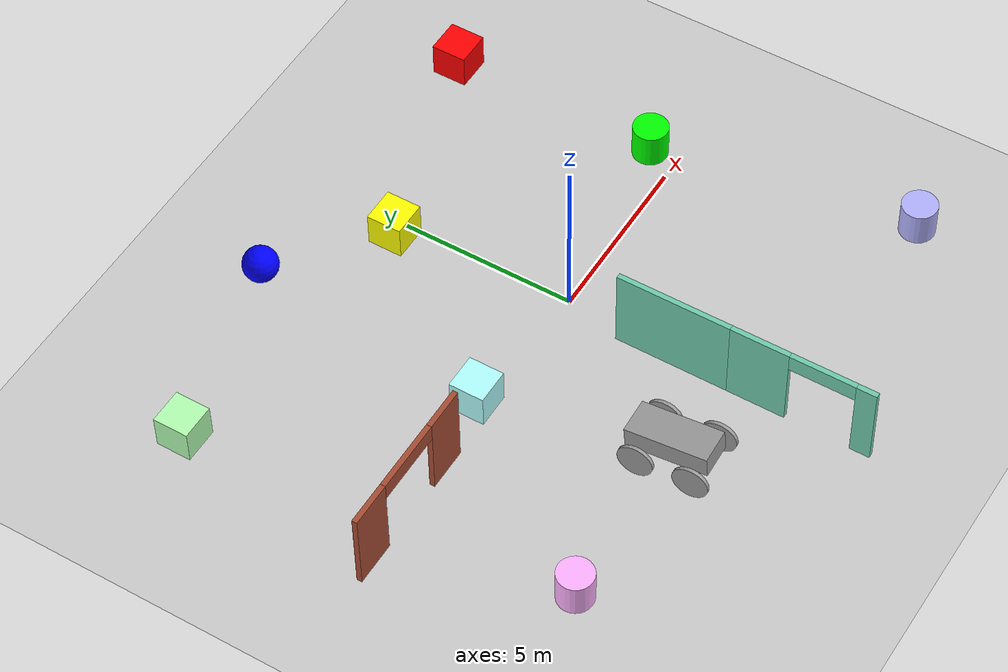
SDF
<sdf version="1.6">
 <world name="default">
  <model name="ground_plane">
   <static>1</static>
   <link name="link">
    <collision name="collision">
     <geometry><plane><normal>0 0 1</normal><size>100 100</size></plane></geometry>
     <surface>
      <contact><collide_bitmask>65535</collide_bitmask></contact>
      <friction><ode><mu>100</mu><mu2>50</mu2></ode></friction>
     </surface>
    </collision>
    <visual name="visual">
     <cast_shadows>0</cast_shadows>
     <geometry><plane><normal>0 0 1</normal><size>100 100</size></plane></geometry>
     <material>
      <script><uri>file://media/materials/scripts/gazebo.material</uri><name>Gazebo/Grey</name></script>
     </material>
    </visual>
   </link>
  </model>
  <model name="ground_plane">
   <static>1</static>
   <link name="link">
    <collision name="collision">
     <geometry><plane><normal>0 0 1</normal><size>100 100</size></plane></geometry>
     <surface>
      <contact><collide_bitmask>65535</collide_bitmask></contact>
      <friction><ode><mu>100</mu><mu2>50</mu2></ode></friction>
     </surface>
    </collision>
    <visual name="visual">
     <cast_shadows>0</cast_shadows>
     <geometry><plane><normal>0 0 1</normal><size>100 100</size></plane></geometry>
     <material>
      <script><uri>file://media/materials/scripts/gazebo.material</uri><name>Gazebo/Grey</name></script>
     </material>
    </visual>
   </link>
  </model>
  <model name="model">
   <link name="link_0_clone">
    <inertial>
     <mass>1</mass>
     <inertia><ixx>0.145833</ixx><ixy>0</ixy><ixz>0</ixz><iyy>0.145833</iyy><iyz>0</iyz><izz>0.125</izz></inertia>
    </inertial>
    <pose>0.800049 0.773824 -0.030357 0 -0 0</pose>
    <visual name="visual">
     <pose>0 0 0 0 1.5707 0</pose>
     <geometry><cylinder><radius>0.5</radius><length>0.1</length></cylinder></geometry>
     <material>
      <lighting>1</lighting>
      <script><uri>file://media/materials/scripts/gazebo.material</uri><name>Gazebo/Grey</name></script>
      <shader type="vertex"><normal_map>__default__</normal_map></shader>
      <ambient>0.3 0.3 0.3 1</ambient>
      <diffuse>0.7 0.7 0.7 1</diffuse>
      <specular>0.01 0.01 0.01 1</specular>
      <emissive>0 0 0 1</emissive>
     </material>
    </visual>
    <collision name="collision">
     <pose>0 0 0 0 1.5707 0</pose>
     <geometry><cylinder><radius>0.5</radius><length>0.1</length></cylinder></geometry>
     <surface>
      <friction>
       <ode><mu>1</mu><mu2>1</mu2><fdir1>0 0 0</fdir1><slip1>0</slip1><slip2>0</slip2></ode>
       <torsional>
        <coefficient>1</coefficient>
        <patch_radius>0</patch_radius>
        <surface_radius>0</surface_radius>
        <use_patch_radius>1</use_patch_radius>
        <ode><slip>0</slip></ode>
       </torsional>
      </friction>
      <bounce><restitution_coefficient>0</restitution_coefficient><threshold>1e+06</threshold></bounce>
      <contact>
       <collide_without_contact>0</collide_without_contact>
       <collide_without_contact_bitmask>1</collide_without_contact_bitmask>
       <collide_bitmask>1</collide_bitmask>
       <ode>
        <soft_cfm>0</soft_cfm>
        <soft_erp>0.2</soft_erp>
        <kp>1e+13</kp>
        <kd>1</kd>
        <max_vel>0.01</max_vel>
        <min_depth>0</min_depth>
       </ode>
       <bullet>
        <split_impulse>1</split_impulse>
        <split_impulse_penetration_threshold>-0.01</split_impulse_penetration_threshold>
        <soft_cfm>0</soft_cfm>
        <soft_erp>0.2</soft_erp>
        <kp>1e+13</kp>
        <kd>1</kd>
       </bullet>
      </contact>
     </surface>
    </collision>
   </link>
   <link name="link_0_clone_clone">
    <inertial>
     <mass>1</mass>
     <inertia><ixx>0.145833</ixx><ixy>0</ixy><ixz>0</ixz><iyy>0.145833</iyy><iyz>0</iyz><izz>0.125</izz></inertia>
    </inertial>
    <pose>-0.800048 0.773824 -0.030357 0 -0 0</pose>
    <visual name="visual">
     <pose>0 0 0 0 1.5707 0</pose>
     <geometry><cylinder><radius>0.5</radius><length>0.1</length></cylinder></geometry>
     <material>
      <lighting>1</lighting>
      <script><uri>file://media/materials/scripts/gazebo.material</uri><name>Gazebo/Grey</name></script>
      <shader type="vertex"><normal_map>__default__</normal_map></shader>
      <ambient>0.3 0.3 0.3 1</ambient>
      <diffuse>0.7 0.7 0.7 1</diffuse>
      <specular>0.01 0.01 0.01 1</specular>
      <emissive>0 0 0 1</emissive>
     </material>
    </visual>
    <collision name="collision">
     <pose>0 0 0 0 1.5707 0</pose>
     <geometry><cylinder><radius>0.5</radius><length>0.1</length></cylinder></geometry>
     <surface>
      <friction>
       <ode><mu>1</mu><mu2>1</mu2><fdir1>0 0 0</fdir1><slip1>0</slip1><slip2>0</slip2></ode>
       <torsional>
        <coefficient>1</coefficient>
        <patch_radius>0</patch_radius>
        <surface_radius>0</surface_radius>
        <use_patch_radius>1</use_patch_radius>
        <ode><slip>0</slip></ode>
       </torsional>
      </friction>
      <bounce><restitution_coefficient>0</restitution_coefficient><threshold>1e+06</threshold></bounce>
      <contact>
       <collide_without_contact>0</collide_without_contact>
       <collide_without_contact_bitmask>1</collide_without_contact_bitmask>
       <collide_bitmask>1</collide_bitmask>
       <ode>
        <soft_cfm>0</soft_cfm>
        <soft_erp>0.2</soft_erp>
        <kp>1e+13</kp>
        <kd>1</kd>
        <max_vel>0.01</max_vel>
        <min_depth>0</min_depth>
       </ode>
       <bullet>
        <split_impulse>1</split_impulse>
        <split_impulse_penetration_threshold>-0.01</split_impulse_penetration_threshold>
        <soft_cfm>0</soft_cfm>
        <soft_erp>0.2</soft_erp>
        <kp>1e+13</kp>
        <kd>1</kd>
       </bullet>
      </contact>
     </surface>
    </collision>
   </link>
   <link name="link_0_clone_clone_clone">
    <inertial>
     <mass>1</mass>
     <inertia><ixx>0.145833</ixx><ixy>0</ixy><ixz>0</ixz><iyy>0.145833</iyy><iyz>0</iyz><izz>0.125</izz></inertia>
    </inertial>
    <pose>-0.800048 -0.758676 -0.062857 0 -0 0</pose>
    <visual name="visual">
     <pose>0 0 0 0 1.5707 0</pose>
     <geometry><cylinder><radius>0.5</radius><length>0.1</length></cylinder></geometry>
     <material>
      <lighting>1</lighting>
      <script><uri>file://media/materials/scripts/gazebo.material</uri><name>Gazebo/Grey</name></script>
      <shader type="vertex"><normal_map>__default__</normal_map></shader>
      <ambient>0.3 0.3 0.3 1</ambient>
      <diffuse>0.7 0.7 0.7 1</diffuse>
      <specular>0.01 0.01 0.01 1</specular>
      <emissive>0 0 0 1</emissive>
     </material>
    </visual>
    <collision name="collision">
     <pose>0 0 0 0 1.5707 0</pose>
     <geometry><cylinder><radius>0.5</radius><length>0.1</length></cylinder></geometry>
     <surface>
      <friction>
       <ode><mu>1</mu><mu2>1</mu2><fdir1>0 0 0</fdir1><slip1>0</slip1><slip2>0</slip2></ode>
       <torsional>
        <coefficient>1</coefficient>
        <patch_radius>0</patch_radius>
        <surface_radius>0</surface_radius>
        <use_patch_radius>1</use_patch_radius>
        <ode><slip>0</slip></ode>
       </torsional>
      </friction>
      <bounce><restitution_coefficient>0</restitution_coefficient><threshold>1e+06</threshold></bounce>
      <contact>
       <collide_without_contact>0</collide_without_contact>
       <collide_without_contact_bitmask>1</collide_without_contact_bitmask>
       <collide_bitmask>1</collide_bitmask>
       <ode>
        <soft_cfm>0</soft_cfm>
        <soft_erp>0.2</soft_erp>
        <kp>1e+13</kp>
        <kd>1</kd>
        <max_vel>0.01</max_vel>
        <min_depth>0</min_depth>
       </ode>
       <bullet>
        <split_impulse>1</split_impulse>
        <split_impulse_penetration_threshold>-0.01</split_impulse_penetration_threshold>
        <soft_cfm>0</soft_cfm>
        <soft_erp>0.2</soft_erp>
        <kp>1e+13</kp>
        <kd>1</kd>
       </bullet>
      </contact>
     </surface>
    </collision>
   </link>
   <link name="link_0_clone_clone_clone_0">
    <inertial>
     <mass>1</mass>
     <inertia><ixx>0.145833</ixx><ixy>0</ixy><ixz>0</ixz><iyy>0.145833</iyy><iyz>0</iyz><izz>0.125</izz></inertia>
    </inertial>
    <pose>0.800049 -0.758676 -0.062857 0 -0 0</pose>
    <visual name="visual">
     <pose>0 0 0 0 1.5707 0</pose>
     <geometry><cylinder><radius>0.5</radius><length>0.1</length></cylinder></geometry>
     <material>
      <lighting>1</lighting>
      <script><uri>file://media/materials/scripts/gazebo.material</uri><name>Gazebo/Grey</name></script>
      <shader type="vertex"><normal_map>__default__</normal_map></shader>
      <ambient>0.3 0.3 0.3 1</ambient>
      <diffuse>0.7 0.7 0.7 1</diffuse>
      <specular>0.01 0.01 0.01 1</specular>
      <emissive>0 0 0 1</emissive>
     </material>
    </visual>
    <collision name="collision">
     <pose>0 0 0 0 1.5707 0</pose>
     <geometry><cylinder><radius>0.5</radius><length>0.1</length></cylinder></geometry>
     <surface>
      <friction>
       <ode><mu>1</mu><mu2>1</mu2><fdir1>0 0 0</fdir1><slip1>0</slip1><slip2>0</slip2></ode>
       <torsional>
        <coefficient>1</coefficient>
        <patch_radius>0</patch_radius>
        <surface_radius>0</surface_radius>
        <use_patch_radius>1</use_patch_radius>
        <ode><slip>0</slip></ode>
       </torsional>
      </friction>
      <bounce><restitution_coefficient>0</restitution_coefficient><threshold>1e+06</threshold></bounce>
      <contact>
       <collide_without_contact>0</collide_without_contact>
       <collide_without_contact_bitmask>1</collide_without_contact_bitmask>
       <collide_bitmask>1</collide_bitmask>
       <ode>
        <soft_cfm>0</soft_cfm>
        <soft_erp>0.2</soft_erp>
        <kp>1e+13</kp>
        <kd>1</kd>
        <max_vel>0.01</max_vel>
        <min_depth>0</min_depth>
       </ode>
       <bullet>
        <split_impulse>1</split_impulse>
        <split_impulse_penetration_threshold>-0.01</split_impulse_penetration_threshold>
        <soft_cfm>0</soft_cfm>
        <soft_erp>0.2</soft_erp>
        <kp>1e+13</kp>
        <kd>1</kd>
       </bullet>
      </contact>
     </surface>
    </collision>
   </link>
   <link name="link_1">
    <inertial>
     <mass>1</mass>
     <inertia>
      <ixx>0.166667</ixx>
      <ixy>0</ixy>
      <ixz>0</ixz>
      <iyy>0.166667</iyy>
      <iyz>0</iyz>
      <izz>0.166667</izz>
     </inertia>
    </inertial>
    <pose>0 0.741324 -0.062857 0 -0 0</pose>
    <visual name="visual">
     <geometry><box><size>1.5 0.15 0.15</size></box></geometry>
     <material>
      <lighting>1</lighting>
      <script><uri>file://media/materials/scripts/gazebo.material</uri><name>Gazebo/Grey</name></script>
      <shader type="vertex"><normal_map>__default__</normal_map></shader>
      <ambient>0.3 0.3 0.3 1</ambient>
      <diffuse>0.7 0.7 0.7 1</diffuse>
      <specular>0.01 0.01 0.01 1</specular>
      <emissive>0 0 0 1</emissive>
     </material>
    </visual>
    <collision name="collision">
     <geometry><box><size>1.5 0.15 0.15</size></box></geometry>
     <surface>
      <friction>
       <ode><mu>1</mu><mu2>1</mu2><fdir1>0 0 0</fdir1><slip1>0</slip1><slip2>0</slip2></ode>
       <torsional>
        <coefficient>1</coefficient>
        <patch_radius>0</patch_radius>
        <surface_radius>0</surface_radius>
        <use_patch_radius>1</use_patch_radius>
        <ode><slip>0</slip></ode>
       </torsional>
      </friction>
      <bounce><restitution_coefficient>0</restitution_coefficient><threshold>1e+06</threshold></bounce>
      <contact>
       <collide_without_contact>0</collide_without_contact>
       <collide_without_contact_bitmask>1</collide_without_contact_bitmask>
       <collide_bitmask>1</collide_bitmask>
       <ode>
        <soft_cfm>0</soft_cfm>
        <soft_erp>0.2</soft_erp>
        <kp>1e+13</kp>
        <kd>1</kd>
        <max_vel>0.01</max_vel>
        <min_depth>0</min_depth>
       </ode>
       <bullet>
        <split_impulse>1</split_impulse>
        <split_impulse_penetration_threshold>-0.01</split_impulse_penetration_threshold>
        <soft_cfm>0</soft_cfm>
        <soft_erp>0.2</soft_erp>
        <kp>1e+13</kp>
        <kd>1</kd>
       </bullet>
      </contact>
     </surface>
    </collision>
   </link>
   <link name="link_1_clone">
    <inertial>
     <mass>1</mass>
     <inertia>
      <ixx>0.166667</ixx>
      <ixy>0</ixy>
      <ixz>0</ixz>
      <iyy>0.166667</iyy>
      <iyz>0</iyz>
      <izz>0.166667</izz>
     </inertia>
    </inertial>
    <pose>0 -0.758676 -0.062857 0 -0 0</pose>
    <visual name="visual">
     <geometry><box><size>1.5 0.15 0.15</size></box></geometry>
     <material>
      <lighting>1</lighting>
      <script><uri>file://media/materials/scripts/gazebo.material</uri><name>Gazebo/Grey</name></script>
      <shader type="vertex"><normal_map>__default__</normal_map></shader>
      <ambient>0.3 0.3 0.3 1</ambient>
      <diffuse>0.7 0.7 0.7 1</diffuse>
      <specular>0.01 0.01 0.01 1</specular>
      <emissive>0 0 0 1</emissive>
     </material>
    </visual>
    <collision name="collision">
     <geometry><box><size>1.5 0.15 0.15</size></box></geometry>
     <surface>
      <friction>
       <ode><mu>1</mu><mu2>1</mu2><fdir1>0 0 0</fdir1><slip1>0</slip1><slip2>0</slip2></ode>
       <torsional>
        <coefficient>1</coefficient>
        <patch_radius>0</patch_radius>
        <surface_radius>0</surface_radius>
        <use_patch_radius>1</use_patch_radius>
        <ode><slip>0</slip></ode>
       </torsional>
      </friction>
      <bounce><restitution_coefficient>0</restitution_coefficient><threshold>1e+06</threshold></bounce>
      <contact>
       <collide_without_contact>0</collide_without_contact>
       <collide_without_contact_bitmask>1</collide_without_contact_bitmask>
       <collide_bitmask>1</collide_bitmask>
       <ode>
        <soft_cfm>0</soft_cfm>
        <soft_erp>0.2</soft_erp>
        <kp>1e+13</kp>
        <kd>1</kd>
        <max_vel>0.01</max_vel>
        <min_depth>0</min_depth>
       </ode>
       <bullet>
        <split_impulse>1</split_impulse>
        <split_impulse_penetration_threshold>-0.01</split_impulse_penetration_threshold>
        <soft_cfm>0</soft_cfm>
        <soft_erp>0.2</soft_erp>
        <kp>1e+13</kp>
        <kd>1</kd>
       </bullet>
      </contact>
     </surface>
    </collision>
   </link>
   <link name="link_4">
    <inertial>
     <mass>2.30548</mass>
     <inertia><ixx>1.2133</ixx><ixy>0</ixy><ixz>0</ixz><iyy>0.384247</iyy><iyz>0</iyz><izz>1.2133</izz></inertia>
    </inertial>
    <pose>0 0.069782 0.312143 0 -0 0</pose>
    <visual name="visual">
     <geometry><box><size>1 2.30548 0.6</size></box></geometry>
     <material>
      <lighting>1</lighting>
      <script><uri>file://media/materials/scripts/gazebo.material</uri><name>Gazebo/Grey</name></script>
      <emissive>0 0 0 1</emissive>
      <shader type="vertex"><normal_map>__default__</normal_map></shader>
      <ambient>0.3 0.3 0.3 1</ambient>
      <diffuse>0.7 0.7 0.7 1</diffuse>
      <specular>0.01 0.01 0.01 1</specular>
     </material>
    </visual>
    <collision name="collision">
     <geometry><box><size>1 2.30548 0.6</size></box></geometry>
     <surface>
      <friction>
       <ode><mu>1</mu><mu2>1</mu2><fdir1>0 0 0</fdir1><slip1>0</slip1><slip2>0</slip2></ode>
       <torsional>
        <coefficient>1</coefficient>
        <patch_radius>0</patch_radius>
        <surface_radius>0</surface_radius>
        <use_patch_radius>1</use_patch_radius>
        <ode><slip>0</slip></ode>
       </torsional>
      </friction>
      <bounce><restitution_coefficient>0</restitution_coefficient><threshold>1e+06</threshold></bounce>
      <contact>
       <collide_without_contact>0</collide_without_contact>
       <collide_without_contact_bitmask>1</collide_without_contact_bitmask>
       <collide_bitmask>1</collide_bitmask>
       <ode>
        <soft_cfm>0</soft_cfm>
        <soft_erp>0.2</soft_erp>
        <kp>1e+13</kp>
        <kd>1</kd>
        <max_vel>0.01</max_vel>
        <min_depth>0</min_depth>
       </ode>
       <bullet>
        <split_impulse>1</split_impulse>
        <split_impulse_penetration_threshold>-0.01</split_impulse_penetration_threshold>
        <soft_cfm>0</soft_cfm>
        <soft_erp>0.2</soft_erp>
        <kp>1e+13</kp>
        <kd>1</kd>
       </bullet>
      </contact>
     </surface>
    </collision>
   </link>
   <joint name="link_1_JOINT_2" type="revolute">
    <parent>link_1</parent>
    <child>link_0_clone</child>
    <axis>
     <xyz>1 0 0</xyz>
     <use_parent_model_frame>0</use_parent_model_frame>
     <limit>
      <lower>-1.79769e+308</lower>
      <upper>1.79769e+308</upper>
      <effort>-1</effort>
      <velocity>-1</velocity>
     </limit>
     <dynamics>
      <spring_reference>0</spring_reference>
      <spring_stiffness>0</spring_stiffness>
      <damping>0</damping>
     </dynamics>
    </axis>
    <physics>
     <ode><limit><cfm>0</cfm><erp>0.2</erp></limit><suspension><cfm>0</cfm><erp>0.2</erp></suspension></ode>
    </physics>
   </joint>
   <joint name="link_1_JOINT_3" type="revolute">
    <parent>link_1</parent>
    <child>link_0_clone_clone</child>
    <axis>
     <xyz>1 0 0</xyz>
     <use_parent_model_frame>0</use_parent_model_frame>
     <limit>
      <lower>-1.79769e+308</lower>
      <upper>1.79769e+308</upper>
      <effort>-1</effort>
      <velocity>-1</velocity>
     </limit>
     <dynamics>
      <spring_reference>0</spring_reference>
      <spring_stiffness>0</spring_stiffness>
      <damping>0</damping>
     </dynamics>
    </axis>
    <physics>
     <ode><limit><cfm>0</cfm><erp>0.2</erp></limit><suspension><cfm>0</cfm><erp>0.2</erp></suspension></ode>
    </physics>
   </joint>
   <joint name="link_1_JOINT_4" type="revolute">
    <parent>link_1</parent>
    <child>link_1_clone</child>
    <axis>
     <xyz>1 0 0</xyz>
     <use_parent_model_frame>0</use_parent_model_frame>
     <limit>
      <lower>-1.79769e+308</lower>
      <upper>1.79769e+308</upper>
      <effort>-1</effort>
      <velocity>-1</velocity>
     </limit>
     <dynamics>
      <spring_reference>0</spring_reference>
      <spring_stiffness>0</spring_stiffness>
      <damping>0</damping>
     </dynamics>
    </axis>
    <physics>
     <ode><limit><cfm>0</cfm><erp>0.2</erp></limit><suspension><cfm>0</cfm><erp>0.2</erp></suspension></ode>
    </physics>
   </joint>
   <joint name="link_1_JOINT_7" type="revolute">
    <parent>link_1</parent>
    <child>link_4</child>
    <axis>
     <xyz>1 0 0</xyz>
     <use_parent_model_frame>0</use_parent_model_frame>
     <limit>
      <lower>-1.79769e+308</lower>
      <upper>1.79769e+308</upper>
      <effort>-1</effort>
      <velocity>-1</velocity>
     </limit>
     <dynamics>
      <spring_reference>0</spring_reference>
      <spring_stiffness>0</spring_stiffness>
      <damping>0</damping>
     </dynamics>
    </axis>
    <physics>
     <ode><limit><cfm>0</cfm><erp>0.2</erp></limit><suspension><cfm>0</cfm><erp>0.2</erp></suspension></ode>
    </physics>
   </joint>
   <joint name="link_1_JOINT_8" type="revolute">
    <parent>link_1</parent>
    <child>link_4</child>
    <axis>
     <xyz>1 0 0</xyz>
     <use_parent_model_frame>0</use_parent_model_frame>
     <limit>
      <lower>-1.79769e+308</lower>
      <upper>1.79769e+308</upper>
      <effort>-1</effort>
      <velocity>-1</velocity>
     </limit>
     <dynamics>
      <spring_reference>0</spring_reference>
      <spring_stiffness>0</spring_stiffness>
      <damping>0</damping>
     </dynamics>
    </axis>
    <physics>
     <ode><limit><cfm>0</cfm><erp>0.2</erp></limit><suspension><cfm>0</cfm><erp>0.2</erp></suspension></ode>
    </physics>
   </joint>
   <joint name="link_1_clone_JOINT_5" type="revolute">
    <parent>link_1_clone</parent>
    <child>link_0_clone_clone_clone</child>
    <axis>
     <xyz>1 0 0</xyz>
     <use_parent_model_frame>0</use_parent_model_frame>
     <limit>
      <lower>-1.79769e+308</lower>
      <upper>1.79769e+308</upper>
      <effort>-1</effort>
      <velocity>-1</velocity>
     </limit>
     <dynamics>
      <spring_reference>0</spring_reference>
      <spring_stiffness>0</spring_stiffness>
      <damping>0</damping>
     </dynamics>
    </axis>
    <physics>
     <ode><limit><cfm>0</cfm><erp>0.2</erp></limit><suspension><cfm>0</cfm><erp>0.2</erp></suspension></ode>
    </physics>
   </joint>
   <joint name="link_1_clone_JOINT_6" type="revolute">
    <parent>link_1_clone</parent>
    <child>link_0_clone_clone_clone_0</child>
    <axis>
     <xyz>1 0 0</xyz>
     <use_parent_model_frame>0</use_parent_model_frame>
     <limit>
      <lower>-1.79769e+308</lower>
      <upper>1.79769e+308</upper>
      <effort>-1</effort>
      <velocity>-1</velocity>
     </limit>
     <dynamics>
      <spring_reference>0</spring_reference>
      <spring_stiffness>0</spring_stiffness>
      <damping>0</damping>
     </dynamics>
    </axis>
    <physics>
     <ode><limit><cfm>0</cfm><erp>0.2</erp></limit><suspension><cfm>0</cfm><erp>0.2</erp></suspension></ode>
    </physics>
   </joint>
   <joint name="link_1_clone_JOINT_9" type="revolute">
    <parent>link_1_clone</parent>
    <child>link_4</child>
    <axis>
     <xyz>1 0 0</xyz>
     <use_parent_model_frame>0</use_parent_model_frame>
     <limit>
      <lower>-1.79769e+308</lower>
      <upper>1.79769e+308</upper>
      <effort>-1</effort>
      <velocity>-1</velocity>
     </limit>
     <dynamics>
      <spring_reference>0</spring_reference>
      <spring_stiffness>0</spring_stiffness>
      <damping>0</damping>
     </dynamics>
    </axis>
    <physics>
     <ode><limit><cfm>0</cfm><erp>0.2</erp></limit><suspension><cfm>0</cfm><erp>0.2</erp></suspension></ode>
    </physics>
   </joint>
   <static>0</static>
   <pose>-2.98182 -4.9047 0.593807 -0.082213 1e-06 0.040703</pose>
  </model>
  <model name="UdacityWorld3.world">
   <pose>-5.16432 -4.47936 0 0 -0 0</pose>
   <link name="Wall_15">
    <pose>-2.63932 4.42064 0 0 -0 3.14159</pose>
    <visual name="Wall_15_Visual_0">
     <pose>-1.64927 0 1.25 0 -0 0</pose>
     <geometry><box><size>1.20147 0.15 2.5</size></box></geometry>
     <material>
      <script><uri>file://media/materials/scripts/gazebo.material</uri><name>Gazebo/Bricks</name></script>
      <ambient>1 1 1 1</ambient>
     </material>
     <meta><layer>0</layer></meta>
    </visual>
    <collision name="Wall_15_Collision_0">
     <geometry><box><size>1.20147 0.15 2.5</size></box></geometry>
     <pose>-1.64927 0 1.25 0 -0 0</pose>
    </collision>
    <visual name="Wall_15_Visual_1">
     <pose>1.6306 0 1.25 0 -0 0</pose>
     <geometry><box><size>1.2388 0.15 2.5</size></box></geometry>
     <material>
      <script><uri>file://media/materials/scripts/gazebo.material</uri><name>Gazebo/Bricks</name></script>
      <ambient>1 1 1 1</ambient>
     </material>
     <meta><layer>0</layer></meta>
    </visual>
    <collision name="Wall_15_Collision_1">
     <geometry><box><size>1.2388 0.15 2.5</size></box></geometry>
     <pose>1.6306 0 1.25 0 -0 0</pose>
    </collision>
    <visual name="Wall_15_Visual_2">
     <pose>-0.018668 0 2.25 0 -0 0</pose>
     <geometry><box><size>2.05973 0.15 0.5</size></box></geometry>
     <material>
      <script><uri>file://media/materials/scripts/gazebo.material</uri><name>Gazebo/Bricks</name></script>
      <ambient>1 1 1 1</ambient>
     </material>
     <meta><layer>0</layer></meta>
    </visual>
    <collision name="Wall_15_Collision_2">
     <geometry><box><size>2.05973 0.15 0.5</size></box></geometry>
     <pose>-0.018668 0 2.25 0 -0 0</pose>
    </collision>
   </link>
   <link name="Wall_2">
    <collision name="Wall_2_Collision">
     <geometry><box><size>3.25 0.15 2.5</size></box></geometry>
     <pose>0 0 1.25 0 -0 0</pose>
    </collision>
    <visual name="Wall_2_Visual">
     <pose>0 0 1.25 0 -0 0</pose>
     <geometry><box><size>3.25 0.15 2.5</size></box></geometry>
     <material>
      <script><uri>file://media/materials/scripts/gazebo.material</uri><name>Gazebo/Grey</name></script>
      <ambient>0.435294 0.796078 0.67451 1</ambient>
     </material>
     <meta><layer>0</layer></meta>
    </visual>
    <pose>4.81432 1.22936 0 0 -0 1.5708</pose>
   </link>
   <link name="Wall_4">
    <pose>4.81432 -2.37064 0 0 0 -1.5708</pose>
    <visual name="Wall_4_Visual_0">
     <pose>-1.21393 0 1.25 0 -0 0</pose>
     <geometry><box><size>1.82215 0.15 2.5</size></box></geometry>
     <material>
      <script><uri>file://media/materials/scripts/gazebo.material</uri><name>Gazebo/Grey</name></script>
      <ambient>0.435294 0.796078 0.67451 1</ambient>
     </material>
     <meta><layer>0</layer></meta>
    </visual>
    <collision name="Wall_4_Collision_0">
     <geometry><box><size>1.82215 0.15 2.5</size></box></geometry>
     <pose>-1.21393 0 1.25 0 -0 0</pose>
    </collision>
    <visual name="Wall_4_Visual_1">
     <pose>1.83988 0 1.25 0 -0 0</pose>
     <geometry><box><size>0.570244 0.15 2.5</size></box></geometry>
     <material>
      <script><uri>file://media/materials/scripts/gazebo.material</uri><name>Gazebo/Grey</name></script>
      <ambient>0.435294 0.796078 0.67451 1</ambient>
     </material>
     <meta><layer>0</layer></meta>
    </visual>
    <collision name="Wall_4_Collision_1">
     <geometry><box><size>0.570244 0.15 2.5</size></box></geometry>
     <pose>1.83988 0 1.25 0 -0 0</pose>
    </collision>
    <visual name="Wall_4_Visual_2">
     <pose>0.625952 0 2.25 0 -0 0</pose>
     <geometry><box><size>1.85761 0.15 0.5</size></box></geometry>
     <material>
      <script><uri>file://media/materials/scripts/gazebo.material</uri><name>Gazebo/Grey</name></script>
      <ambient>0.435294 0.796078 0.67451 1</ambient>
     </material>
     <meta><layer>0</layer></meta>
    </visual>
    <collision name="Wall_4_Collision_2">
     <geometry><box><size>1.85761 0.15 0.5</size></box></geometry>
     <pose>0.625952 0 2.25 0 -0 0</pose>
    </collision>
   </link>
   <static>1</static>
  </model>
  <model name="Untitled">
   <link name="link_0">
    <pose>6.35217 4.99401 0 0 -0 0</pose>
    <inertial>
     <mass>1</mass>
     <inertia>
      <ixx>0.166667</ixx>
      <ixy>0</ixy>
      <ixz>0</ixz>
      <iyy>0.166667</iyy>
      <iyz>0</iyz>
      <izz>0.166667</izz>
     </inertia>
    </inertial>
    <visual name="visual">
     <geometry><box><size>1 1 1</size></box></geometry>
     <material>
      <lighting>1</lighting>
      <script><uri>file://media/materials/scripts/gazebo.material</uri><name>Gazebo/Grey</name></script>
      <shader type="pixel"><normal_map>__default__</normal_map></shader>
      <ambient>1 0 0 1</ambient>
      <diffuse>1 0 0 1</diffuse>
      <specular>1 0 0 1</specular>
      <emissive>1 0 0 1</emissive>
     </material>
    </visual>
    <collision name="collision">
     <geometry><box><size>1 1 1</size></box></geometry>
     <surface>
      <friction>
       <ode><mu>1</mu><mu2>1</mu2><fdir1>0 0 0</fdir1><slip1>0</slip1><slip2>0</slip2></ode>
       <torsional>
        <coefficient>1</coefficient>
        <patch_radius>0</patch_radius>
        <surface_radius>0</surface_radius>
        <use_patch_radius>1</use_patch_radius>
        <ode><slip>0</slip></ode>
       </torsional>
      </friction>
      <bounce><restitution_coefficient>0</restitution_coefficient><threshold>1e+06</threshold></bounce>
      <contact>
       <collide_without_contact>0</collide_without_contact>
       <collide_without_contact_bitmask>1</collide_without_contact_bitmask>
       <collide_bitmask>1</collide_bitmask>
       <ode>
        <soft_cfm>0</soft_cfm>
        <soft_erp>0.2</soft_erp>
        <kp>1e+13</kp>
        <kd>1</kd>
        <max_vel>0.01</max_vel>
        <min_depth>0</min_depth>
       </ode>
       <bullet>
        <split_impulse>1</split_impulse>
        <split_impulse_penetration_threshold>-0.01</split_impulse_penetration_threshold>
        <soft_cfm>0</soft_cfm>
        <soft_erp>0.2</soft_erp>
        <kp>1e+13</kp>
        <kd>1</kd>
       </bullet>
      </contact>
     </surface>
    </collision>
   </link>
   <link name="link_1">
    <pose>6.38218 -1.08426 0 0 -0 0</pose>
    <inertial>
     <mass>1</mass>
     <inertia><ixx>0.145833</ixx><ixy>0</ixy><ixz>0</ixz><iyy>0.145833</iyy><iyz>0</iyz><izz>0.125</izz></inertia>
    </inertial>
    <visual name="visual">
     <geometry><cylinder><radius>0.5</radius><length>1</length></cylinder></geometry>
     <material>
      <lighting>1</lighting>
      <script><uri>file://media/materials/scripts/gazebo.material</uri><name>Gazebo/Grey</name></script>
      <shader type="pixel"><normal_map>__default__</normal_map></shader>
      <ambient>0 1 0 1</ambient>
      <diffuse>0 1 0 1</diffuse>
      <specular>0 1 0 1</specular>
      <emissive>0 1 0 1</emissive>
     </material>
    </visual>
    <collision name="collision">
     <geometry><cylinder><radius>0.5</radius><length>1</length></cylinder></geometry>
     <surface>
      <friction>
       <ode><mu>1</mu><mu2>1</mu2><fdir1>0 0 0</fdir1><slip1>0</slip1><slip2>0</slip2></ode>
       <torsional>
        <coefficient>1</coefficient>
        <patch_radius>0</patch_radius>
        <surface_radius>0</surface_radius>
        <use_patch_radius>1</use_patch_radius>
        <ode><slip>0</slip></ode>
       </torsional>
      </friction>
      <bounce><restitution_coefficient>0</restitution_coefficient><threshold>1e+06</threshold></bounce>
      <contact>
       <collide_without_contact>0</collide_without_contact>
       <collide_without_contact_bitmask>1</collide_without_contact_bitmask>
       <collide_bitmask>1</collide_bitmask>
       <ode>
        <soft_cfm>0</soft_cfm>
        <soft_erp>0.2</soft_erp>
        <kp>1e+13</kp>
        <kd>1</kd>
        <max_vel>0.01</max_vel>
        <min_depth>0</min_depth>
       </ode>
       <bullet>
        <split_impulse>1</split_impulse>
        <split_impulse_penetration_threshold>-0.01</split_impulse_penetration_threshold>
        <soft_cfm>0</soft_cfm>
        <soft_erp>0.2</soft_erp>
        <kp>1e+13</kp>
        <kd>1</kd>
       </bullet>
      </contact>
     </surface>
    </collision>
   </link>
   <link name="link_2">
    <pose>-2.6013 5.45781 0 0 -0 0</pose>
    <inertial>
     <mass>1</mass>
     <inertia><ixx>0.1</ixx><ixy>0</ixy><ixz>0</ixz><iyy>0.1</iyy><iyz>0</iyz><izz>0.1</izz></inertia>
    </inertial>
    <visual name="visual">
     <geometry><sphere><radius>0.5</radius></sphere></geometry>
     <material>
      <lighting>1</lighting>
      <script><uri>file://media/materials/scripts/gazebo.material</uri><name>Gazebo/Grey</name></script>
      <shader type="pixel"><normal_map>__default__</normal_map></shader>
      <ambient>0 0 1 1</ambient>
      <diffuse>0 0 1 1</diffuse>
      <specular>0 0 1 1</specular>
      <emissive>0 0 1 1</emissive>
     </material>
    </visual>
    <collision name="collision">
     <geometry><sphere><radius>0.5</radius></sphere></geometry>
     <surface>
      <friction>
       <ode><mu>1</mu><mu2>1</mu2><fdir1>0 0 0</fdir1><slip1>0</slip1><slip2>0</slip2></ode>
       <torsional>
        <coefficient>1</coefficient>
        <patch_radius>0</patch_radius>
        <surface_radius>0</surface_radius>
        <use_patch_radius>1</use_patch_radius>
        <ode><slip>0</slip></ode>
       </torsional>
      </friction>
      <bounce><restitution_coefficient>0</restitution_coefficient><threshold>1e+06</threshold></bounce>
      <contact>
       <collide_without_contact>0</collide_without_contact>
       <collide_without_contact_bitmask>1</collide_without_contact_bitmask>
       <collide_bitmask>1</collide_bitmask>
       <ode>
        <soft_cfm>0</soft_cfm>
        <soft_erp>0.2</soft_erp>
        <kp>1e+13</kp>
        <kd>1</kd>
        <max_vel>0.01</max_vel>
        <min_depth>0</min_depth>
       </ode>
       <bullet>
        <split_impulse>1</split_impulse>
        <split_impulse_penetration_threshold>-0.01</split_impulse_penetration_threshold>
        <soft_cfm>0</soft_cfm>
        <soft_erp>0.2</soft_erp>
        <kp>1e+13</kp>
        <kd>1</kd>
       </bullet>
      </contact>
     </surface>
    </collision>
   </link>
   <link name="link_3">
    <pose>0.329083 3.20504 0 0 -0 0</pose>
    <inertial>
     <mass>1</mass>
     <inertia>
      <ixx>0.166667</ixx>
      <ixy>0</ixy>
      <ixz>0</ixz>
      <iyy>0.166667</iyy>
      <iyz>0</iyz>
      <izz>0.166667</izz>
     </inertia>
    </inertial>
    <visual name="visual">
     <geometry><box><size>1 1 1</size></box></geometry>
     <material>
      <lighting>1</lighting>
      <script><uri>file://media/materials/scripts/gazebo.material</uri><name>Gazebo/Grey</name></script>
      <shader type="pixel"><normal_map>__default__</normal_map></shader>
      <ambient>1 1 0 1</ambient>
      <diffuse>1 1 0 1</diffuse>
      <specular>1 1 0 1</specular>
      <emissive>1 1 0 1</emissive>
     </material>
    </visual>
    <collision name="collision">
     <geometry><box><size>1 1 1</size></box></geometry>
     <surface>
      <friction>
       <ode><mu>1</mu><mu2>1</mu2><fdir1>0 0 0</fdir1><slip1>0</slip1><slip2>0</slip2></ode>
       <torsional>
        <coefficient>1</coefficient>
        <patch_radius>0</patch_radius>
        <surface_radius>0</surface_radius>
        <use_patch_radius>1</use_patch_radius>
        <ode><slip>0</slip></ode>
       </torsional>
      </friction>
      <bounce><restitution_coefficient>0</restitution_coefficient><threshold>1e+06</threshold></bounce>
      <contact>
       <collide_without_contact>0</collide_without_contact>
       <collide_without_contact_bitmask>1</collide_without_contact_bitmask>
       <collide_bitmask>1</collide_bitmask>
       <ode>
        <soft_cfm>0</soft_cfm>
        <soft_erp>0.2</soft_erp>
        <kp>1e+13</kp>
        <kd>1</kd>
        <max_vel>0.01</max_vel>
        <min_depth>0</min_depth>
       </ode>
       <bullet>
        <split_impulse>1</split_impulse>
        <split_impulse_penetration_threshold>-0.01</split_impulse_penetration_threshold>
        <soft_cfm>0</soft_cfm>
        <soft_erp>0.2</soft_erp>
        <kp>1e+13</kp>
        <kd>1</kd>
       </bullet>
      </contact>
     </surface>
    </collision>
   </link>
   <link name="link_4">
    <pose>-6.95719 -6.67275 0 0 -0 0</pose>
    <inertial>
     <mass>1</mass>
     <inertia><ixx>0.145833</ixx><ixy>0</ixy><ixz>0</ixz><iyy>0.145833</iyy><iyz>0</iyz><izz>0.125</izz></inertia>
    </inertial>
    <visual name="visual">
     <geometry><cylinder><radius>0.5</radius><length>1</length></cylinder></geometry>
     <material>
      <lighting>1</lighting>
      <script><uri>file://media/materials/scripts/gazebo.material</uri><name>Gazebo/Grey</name></script>
      <shader type="pixel"><normal_map>__default__</normal_map></shader>
      <ambient>1 0 1 1</ambient>
      <diffuse>1 0.7 1 1</diffuse>
      <specular>0.01 0.01 0.01 1</specular>
      <emissive>0 0 0 1</emissive>
     </material>
    </visual>
    <collision name="collision">
     <geometry><cylinder><radius>0.5</radius><length>1</length></cylinder></geometry>
     <surface>
      <friction>
       <ode><mu>1</mu><mu2>1</mu2><fdir1>0 0 0</fdir1><slip1>0</slip1><slip2>0</slip2></ode>
       <torsional>
        <coefficient>1</coefficient>
        <patch_radius>0</patch_radius>
        <surface_radius>0</surface_radius>
        <use_patch_radius>1</use_patch_radius>
        <ode><slip>0</slip></ode>
       </torsional>
      </friction>
      <bounce><restitution_coefficient>0</restitution_coefficient><threshold>1e+06</threshold></bounce>
      <contact>
       <collide_without_contact>0</collide_without_contact>
       <collide_without_contact_bitmask>1</collide_without_contact_bitmask>
       <collide_bitmask>1</collide_bitmask>
       <ode>
        <soft_cfm>0</soft_cfm>
        <soft_erp>0.2</soft_erp>
        <kp>1e+13</kp>
        <kd>1</kd>
        <max_vel>0.01</max_vel>
        <min_depth>0</min_depth>
       </ode>
       <bullet>
        <split_impulse>1</split_impulse>
        <split_impulse_penetration_threshold>-0.01</split_impulse_penetration_threshold>
        <soft_cfm>0</soft_cfm>
        <soft_erp>0.2</soft_erp>
        <kp>1e+13</kp>
        <kd>1</kd>
       </bullet>
      </contact>
     </surface>
    </collision>
   </link>
   <link name="link_5">
    <pose>-7.92545 4.15986 0 0 -0 0</pose>
    <inertial>
     <mass>1</mass>
     <inertia>
      <ixx>0.166667</ixx>
      <ixy>0</ixy>
      <ixz>0</ixz>
      <iyy>0.166667</iyy>
      <iyz>0</iyz>
      <izz>0.166667</izz>
     </inertia>
    </inertial>
    <visual name="visual">
     <geometry><box><size>1 1 1</size></box></geometry>
     <material>
      <lighting>1</lighting>
      <script><uri>file://media/materials/scripts/gazebo.material</uri><name>Gazebo/Grey</name></script>
      <shader type="pixel"><normal_map>__default__</normal_map></shader>
      <ambient>0.3 1 0.3 1</ambient>
      <diffuse>0.7 1 0.7 1</diffuse>
      <specular>0.01 0.01 0.01 1</specular>
      <emissive>0 0 0 1</emissive>
     </material>
    </visual>
    <collision name="collision">
     <geometry><box><size>1 1 1</size></box></geometry>
     <surface>
      <friction>
       <ode><mu>1</mu><mu2>1</mu2><fdir1>0 0 0</fdir1><slip1>0</slip1><slip2>0</slip2></ode>
       <torsional>
        <coefficient>1</coefficient>
        <patch_radius>0</patch_radius>
        <surface_radius>0</surface_radius>
        <use_patch_radius>1</use_patch_radius>
        <ode><slip>0</slip></ode>
       </torsional>
      </friction>
      <bounce><restitution_coefficient>0</restitution_coefficient><threshold>1e+06</threshold></bounce>
      <contact>
       <collide_without_contact>0</collide_without_contact>
       <collide_without_contact_bitmask>1</collide_without_contact_bitmask>
       <collide_bitmask>1</collide_bitmask>
       <ode>
        <soft_cfm>0</soft_cfm>
        <soft_erp>0.2</soft_erp>
        <kp>1e+13</kp>
        <kd>1</kd>
        <max_vel>0.01</max_vel>
        <min_depth>0</min_depth>
       </ode>
       <bullet>
        <split_impulse>1</split_impulse>
        <split_impulse_penetration_threshold>-0.01</split_impulse_penetration_threshold>
        <soft_cfm>0</soft_cfm>
        <soft_erp>0.2</soft_erp>
        <kp>1e+13</kp>
        <kd>1</kd>
       </bullet>
      </contact>
     </surface>
    </collision>
   </link>
   <link name="link_6">
    <pose>7.64495 -8.50673 0 0 -0 0</pose>
    <inertial>
     <mass>1</mass>
     <inertia><ixx>0.145833</ixx><ixy>0</ixy><ixz>0</ixz><iyy>0.145833</iyy><iyz>0</iyz><izz>0.125</izz></inertia>
    </inertial>
    <visual name="visual">
     <geometry><cylinder><radius>0.5</radius><length>1</length></cylinder></geometry>
     <material>
      <lighting>1</lighting>
      <script><uri>file://media/materials/scripts/gazebo.material</uri><name>Gazebo/Grey</name></script>
      <shader type="pixel"><normal_map>__default__</normal_map></shader>
      <ambient>0.3 0.3 1 1</ambient>
      <diffuse>0.7 0.7 1 1</diffuse>
      <specular>0.01 0.01 0.01 1</specular>
      <emissive>0 0 0 1</emissive>
     </material>
    </visual>
    <collision name="collision">
     <geometry><cylinder><radius>0.5</radius><length>1</length></cylinder></geometry>
     <surface>
      <friction>
       <ode><mu>1</mu><mu2>1</mu2><fdir1>0 0 0</fdir1><slip1>0</slip1><slip2>0</slip2></ode>
       <torsional>
        <coefficient>1</coefficient>
        <patch_radius>0</patch_radius>
        <surface_radius>0</surface_radius>
        <use_patch_radius>1</use_patch_radius>
        <ode><slip>0</slip></ode>
       </torsional>
      </friction>
      <bounce><restitution_coefficient>0</restitution_coefficient><threshold>1e+06</threshold></bounce>
      <contact>
       <collide_without_contact>0</collide_without_contact>
       <collide_without_contact_bitmask>1</collide_without_contact_bitmask>
       <collide_bitmask>1</collide_bitmask>
       <ode>
        <soft_cfm>0</soft_cfm>
        <soft_erp>0.2</soft_erp>
        <kp>1e+13</kp>
        <kd>1</kd>
        <max_vel>0.01</max_vel>
        <min_depth>0</min_depth>
       </ode>
       <bullet>
        <split_impulse>1</split_impulse>
        <split_impulse_penetration_threshold>-0.01</split_impulse_penetration_threshold>
        <soft_cfm>0</soft_cfm>
        <soft_erp>0.2</soft_erp>
        <kp>1e+13</kp>
        <kd>1</kd>
       </bullet>
      </contact>
     </surface>
    </collision>
   </link>
   <link name="link_7">
    <pose>-3.22446 -1.55298 0 0 -0 0</pose>
    <inertial>
     <mass>1</mass>
     <inertia>
      <ixx>0.166667</ixx>
      <ixy>0</ixy>
      <ixz>0</ixz>
      <iyy>0.166667</iyy>
      <iyz>0</iyz>
      <izz>0.166667</izz>
     </inertia>
    </inertial>
    <visual name="visual">
     <geometry><box><size>1 1 1</size></box></geometry>
     <material>
      <lighting>1</lighting>
      <script><uri>file://media/materials/scripts/gazebo.material</uri><name>Gazebo/Grey</name></script>
      <shader type="pixel"><normal_map>__default__</normal_map></shader>
      <ambient>0.3 1 1 1</ambient>
      <diffuse>0.7 1 1 1</diffuse>
      <specular>0.01 0.01 0.01 1</specular>
      <emissive>0 0 0 1</emissive>
     </material>
    </visual>
    <collision name="collision">
     <geometry><box><size>1 1 1</size></box></geometry>
     <surface>
      <friction>
       <ode><mu>1</mu><mu2>1</mu2><fdir1>0 0 0</fdir1><slip1>0</slip1><slip2>0</slip2></ode>
       <torsional>
        <coefficient>1</coefficient>
        <patch_radius>0</patch_radius>
        <surface_radius>0</surface_radius>
        <use_patch_radius>1</use_patch_radius>
        <ode><slip>0</slip></ode>
       </torsional>
      </friction>
      <bounce><restitution_coefficient>0</restitution_coefficient><threshold>1e+06</threshold></bounce>
      <contact>
       <collide_without_contact>0</collide_without_contact>
       <collide_without_contact_bitmask>1</collide_without_contact_bitmask>
       <collide_bitmask>1</collide_bitmask>
       <ode>
        <soft_cfm>0</soft_cfm>
        <soft_erp>0.2</soft_erp>
        <kp>1e+13</kp>
        <kd>1</kd>
        <max_vel>0.01</max_vel>
        <min_depth>0</min_depth>
       </ode>
       <bullet>
        <split_impulse>1</split_impulse>
        <split_impulse_penetration_threshold>-0.01</split_impulse_penetration_threshold>
        <soft_cfm>0</soft_cfm>
        <soft_erp>0.2</soft_erp>
        <kp>1e+13</kp>
        <kd>1</kd>
       </bullet>
      </contact>
     </surface>
    </collision>
   </link>
   <static>0</static>
   <pose>-0.784902 1.89204 0.5 0 -0 0</pose>
  </model>
 </world>
</sdf>
